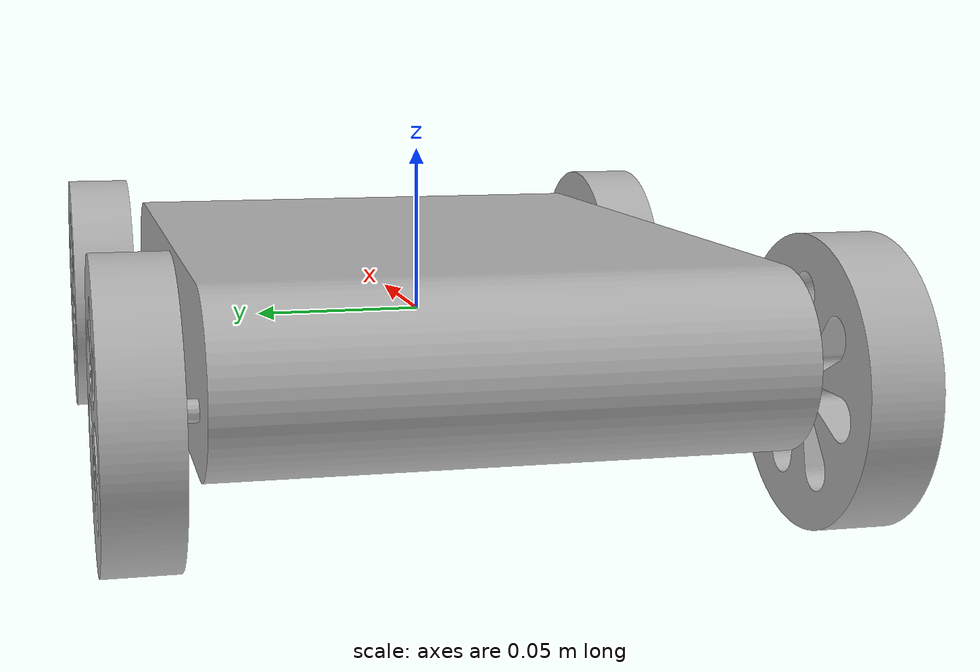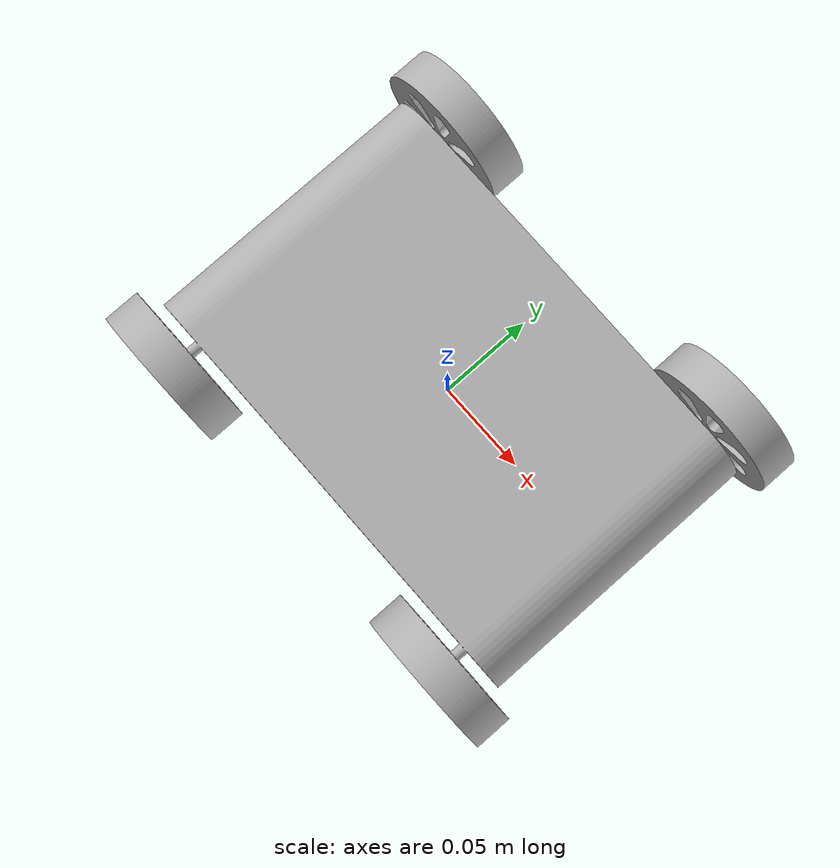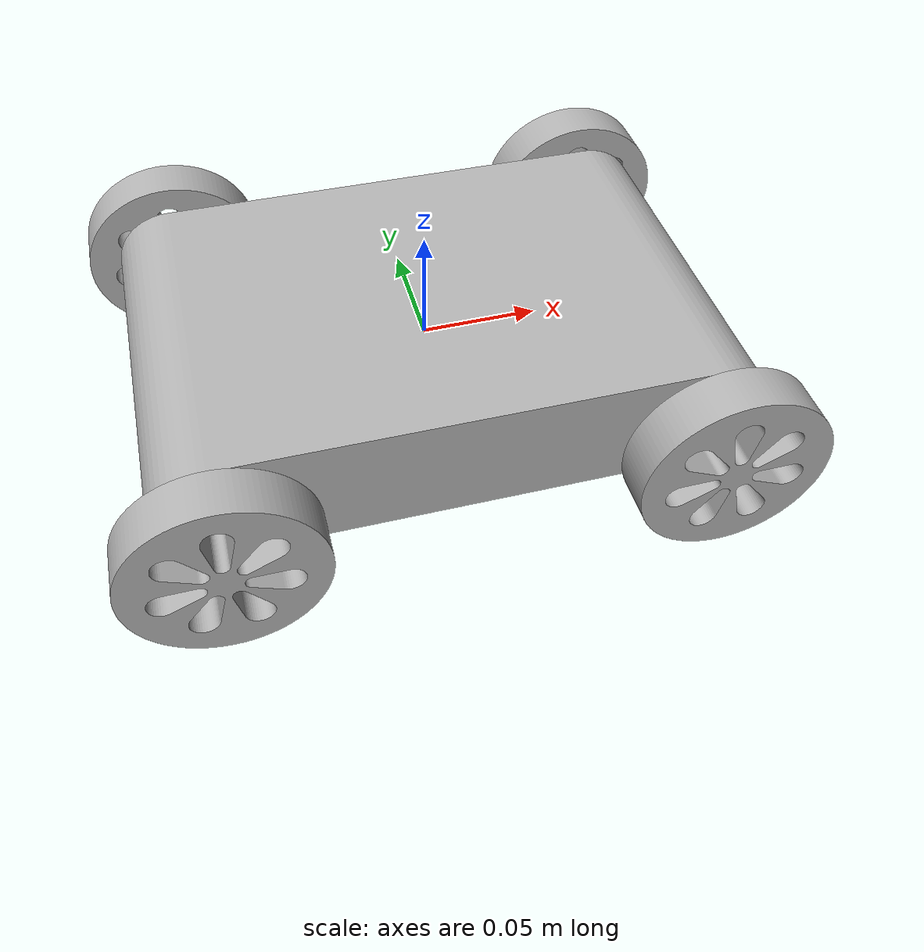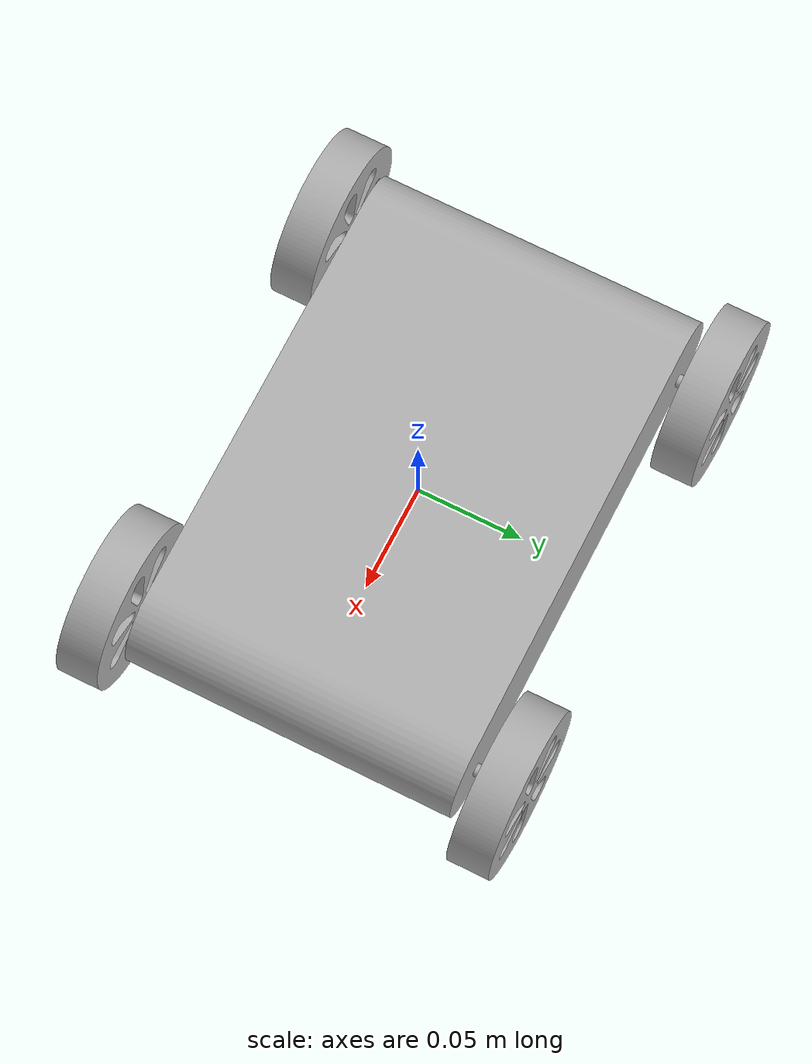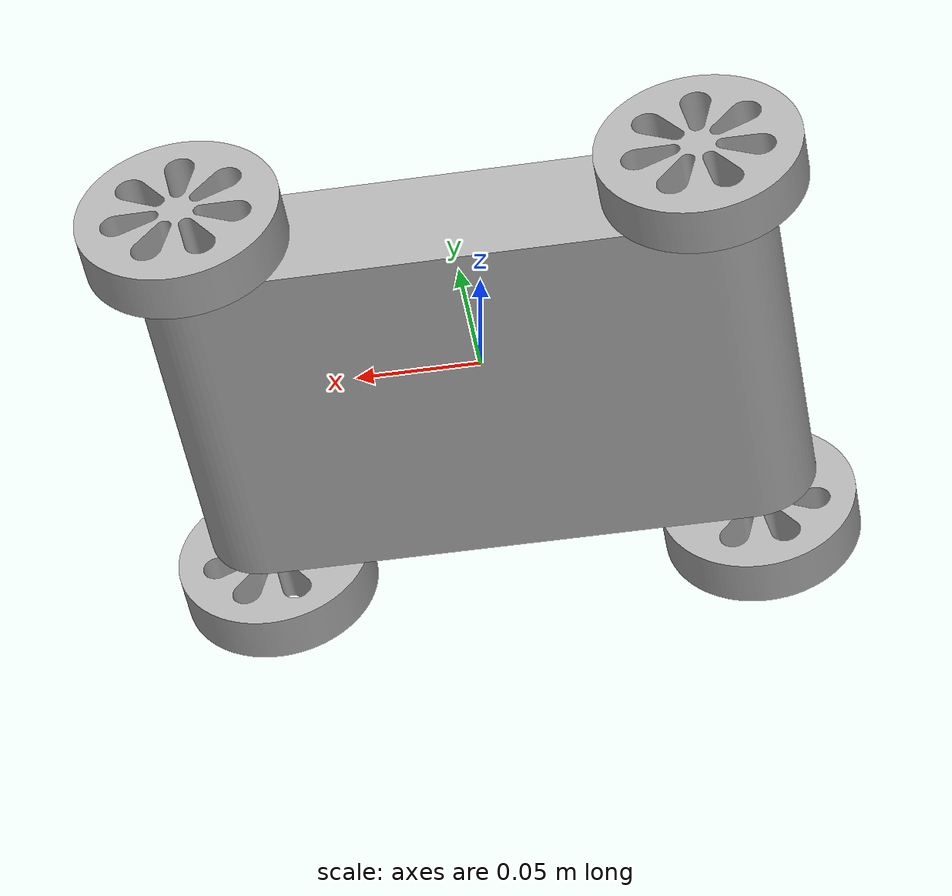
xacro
<?xml version="1.0" ?>
<robot name="slambot" xmlns:xacro="http://www.ros.org/wiki/xacro">

<xacro:include filename="$(find slambot_description)/urdf/materials.xacro" />
<xacro:include filename="$(find slambot_description)/urdf/mapping_robot_v1.trans" />
<link name="base_link">
  <inertial>
    <origin xyz="-1.7537274868631598e-16 9.742930482573111e-18 -2.5442577058725186e-06" rpy="0 0 0"/>
    <mass value="14.655823361744716"/>
    <inertia ixx="0.032673" iyy="0.073324" izz="0.100143" ixy="0.0" iyz="-0.0" ixz="-0.0"/>
  </inertial>
  <visual>
    <origin xyz="0 0 0" rpy="0 0 0"/>
    <geometry>
      <mesh filename="package://slambot_description/meshes/base_link.stl" scale="0.001 0.001 0.001"/>
    </geometry>
    <material name="silver"/>
  </visual>
  <collision>
    <origin xyz="0 0 0" rpy="0 0 0"/>
    <geometry>
      <mesh filename="package://slambot_description/meshes/base_link.stl" scale="0.001 0.001 0.001"/>
    </geometry>
  </collision>
</link>

<link name="front_left_link_1">
  <inertial>
    <origin xyz="2.7755575615628914e-17 0.010000000000000023 9.540979117872439e-18" rpy="0 0 0"/>
    <mass value="0.5698187556329606"/>
    <inertia ixx="0.000288" iyy="0.000538" izz="0.000288" ixy="0.0" iyz="0.0" ixz="0.0"/>
  </inertial>
  <visual>
    <origin xyz="-0.1 -0.084 0.007" rpy="0 0 0"/>
    <geometry>
      <mesh filename="package://slambot_description/meshes/front_left_link_1.stl" scale="0.001 0.001 0.001"/>
    </geometry>
    <material name="silver"/>
  </visual>
  <collision>
    <origin xyz="-0.1 -0.084 0.007" rpy="0 0 0"/>
    <geometry>
      <mesh filename="package://slambot_description/meshes/front_left_link_1.stl" scale="0.001 0.001 0.001"/>
    </geometry>
  </collision>
</link>

<link name="back_left_link_1">
  <inertial>
    <origin xyz="4.163336342344337e-17 0.010000000000000023 8.673617379884035e-19" rpy="0 0 0"/>
    <mass value="0.5698187556329606"/>
    <inertia ixx="0.000288" iyy="0.000538" izz="0.000288" ixy="0.0" iyz="0.0" ixz="-0.0"/>
  </inertial>
  <visual>
    <origin xyz="0.1 -0.084 0.007" rpy="0 0 0"/>
    <geometry>
      <mesh filename="package://slambot_description/meshes/back_left_link_1.stl" scale="0.001 0.001 0.001"/>
    </geometry>
    <material name="silver"/>
  </visual>
  <collision>
    <origin xyz="0.1 -0.084 0.007" rpy="0 0 0"/>
    <geometry>
      <mesh filename="package://slambot_description/meshes/back_left_link_1.stl" scale="0.001 0.001 0.001"/>
    </geometry>
  </collision>
</link>

<link name="middle_left_link"/>

<link name="middle_right_link"/>

<link name="back_right_link_1">
  <inertial>
    <origin xyz="4.163336342344337e-17 -0.010000000000000023 8.673617379884035e-19" rpy="0 0 0"/>
    <mass value="0.5698187556329606"/>
    <inertia ixx="0.000288" iyy="0.000538" izz="0.000288" ixy="0.0" iyz="0.0" ixz="-0.0"/>
  </inertial>
  <visual>
    <origin xyz="0.1 0.084 0.007" rpy="0 0 0"/>
    <geometry>
      <mesh filename="package://slambot_description/meshes/back_right_link_1.stl" scale="0.001 0.001 0.001"/>
    </geometry>
    <material name="silver"/>
  </visual>
  <collision>
    <origin xyz="0.1 0.084 0.007" rpy="0 0 0"/>
    <geometry>
      <mesh filename="package://slambot_description/meshes/back_right_link_1.stl" scale="0.001 0.001 0.001"/>
    </geometry>
  </collision>
</link>

<link name="front_right_link_1">
  <inertial>
    <origin xyz="2.7755575615628914e-17 -0.010000000000000023 9.540979117872439e-18" rpy="0 0 0"/>
    <mass value="0.5698187556329606"/>
    <inertia ixx="0.000288" iyy="0.000538" izz="0.000288" ixy="-0.0" iyz="0.0" ixz="0.0"/>
  </inertial>
  <visual>
    <origin xyz="-0.1 0.084 0.007" rpy="0 0 0"/>
    <geometry>
      <mesh filename="package://slambot_description/meshes/front_right_link_1.stl" scale="0.001 0.001 0.001"/>
    </geometry>
    <material name="silver"/>
  </visual>
  <collision>
    <origin xyz="-0.1 0.084 0.007" rpy="0 0 0"/>
    <geometry>
      <mesh filename="package://slambot_description/meshes/front_right_link_1.stl" scale="0.001 0.001 0.001"/>
    </geometry>
  </collision>
</link>

<link name="lidar_link"/>

<joint name="Obrot 1" type="continuous">
  <origin xyz="0.1 0.084 -0.007" rpy="0 0 0"/>
  <parent link="base_link"/>
  <child link="front_left_link_1"/>
  <axis xyz="0.0 -1.0 0.0"/>
</joint>

<joint name="Obrot 2" type="continuous">
  <origin xyz="-0.1 0.084 -0.007" rpy="0 0 0"/>
  <parent link="base_link"/>
  <child link="back_left_link_1"/>
  <axis xyz="0.0 -1.0 0.0"/>
</joint>

<joint name="Obrot 3" type="continuous">
  <origin xyz="-0.1 -0.084 -0.007" rpy="0 0 0"/>
  <parent link="base_link"/>
  <child link="back_right_link_1"/>
  <axis xyz="0.0 -1.0 0.0"/>
</joint>

<joint name="Obrot 4" type="continuous">
  <origin xyz="0.1 -0.084 -0.007" rpy="0 0 0"/>
  <parent link="base_link"/>
  <child link="front_right_link_1"/>
  <axis xyz="0.0 -1.0 0.0"/>
</joint>

<joint name="middle_left_wheel_joint" type="continuous">
  <origin xyz="0.0 0.084 -0.007" rpy="0 0 0"/>
  <parent link="base_link"/>
  <child link="middle_left_link"/>
  <axis xyz="0 1 0"/>
</joint>

<joint name="middle_right_wheel_joint" type="continuous">
  <origin xyz="0.0 -0.084 -0.007" rpy="0 0 0"/>
  <parent link="base_link"/>
  <child link="middle_right_link"/>
  <axis xyz="0 1 0"/>
</joint>

<joint name="lidar_joint" type="fixed">
  <origin xyz="0.0 0.0 0.1" rpy="3.14159 0 0"/>
  <parent link="base_link"/>
  <child link="lidar_link"/>
</joint>

<ros2_control name="DiffDriveESPSystem" type="system">
  <hardware>
    <plugin>diffdrive_esp/DiffDriveESPHardware</plugin>
    <param name="device_port">/dev/ttyACM0</param>
    <param name="baud_rate">115200</param>
    <param name="timeout_ms">20</param>
    <param name="wheel_separation">0.336</param>
    <param name="wheel_radius">0.034</param>
  </hardware>

  <joint name="middle_left_wheel_joint">
    <command_interface name="velocity"/>
    <state_interface name="position"/>
    <state_interface name="velocity"/>
  </joint>

  <joint name="middle_right_wheel_joint">
    <command_interface name="velocity"/>
    <state_interface name="position"/>
    <state_interface name="velocity"/>
  </joint>
</ros2_control>

</robot>

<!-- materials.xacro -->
<robot name="slambot" xmlns:xacro="http://www.ros.org/wiki/xacro" >

<material name="silver">
  <color rgba="0.700 0.700 0.700 1.000"/>
</material>

</robot>
